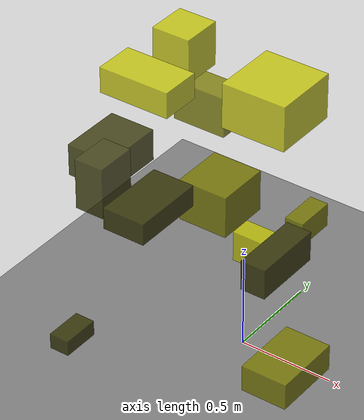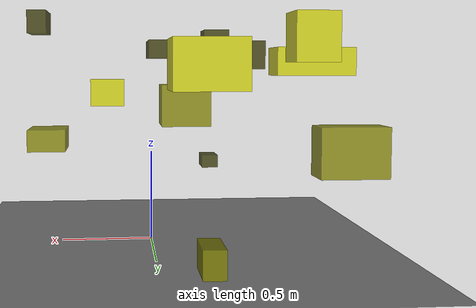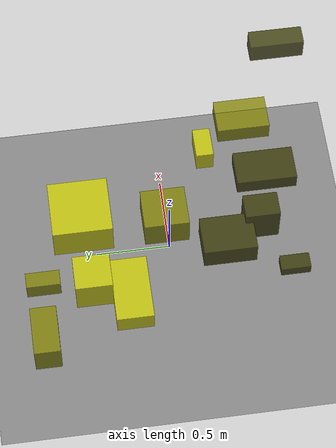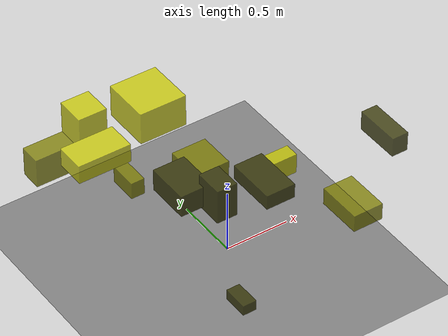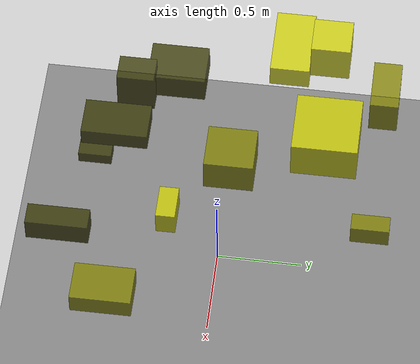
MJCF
<?xml version="1.0"?>
<mujoco model="obstacle_scene">
  <compiler angle="radian" coordinate="local"/>
  <option timestep="0.001" gravity="0 0 -9.81"/>

  <asset>
    <material name="obstacle_mat" rgba="0.8 0.8 0.0 0.8"/>
    <material name="ground_mat" rgba="0.5 0.5 0.5 1"/>
  </asset>

  <worldbody>
    <!-- Ground plane -->
    <geom name="ground" type="plane" size="3 3 0.1" material="ground_mat"/>

    <!-- Obstacles -->
    <body name="obstacle_0" pos="-0.430510 -0.510387 1.075778">
      <geom name="obs_0" type="box" size="0.076344 0.105830 0.133577" rgba="0.2 0.2 0.0 0.8"/>
    </body>
    <body name="obstacle_1" pos="0.629967 -0.575034 0.520615">
      <geom name="obs_1" type="box" size="0.116691 0.174500 0.067420" rgba="0.5 0.5 0.0 0.8"/>
    </body>
    <body name="obstacle_2" pos="-0.242838 0.596199 0.989696">
      <geom name="obs_2" type="box" size="0.181843 0.186540 0.126734" rgba="0.8 0.8 0.0 0.8"/>
    </body>
    <body name="obstacle_3" pos="-0.116175 -0.584388 1.090393">
      <geom name="obs_3" type="box" size="0.109850 0.186987 0.055524" rgba="0.2 0.2 0.0 0.8"/>
    </body>
    <body name="obstacle_4" pos="-0.228035 0.884618 0.111879">
      <geom name="obs_4" type="box" size="0.053265 0.114345 0.068498" rgba="0.5 0.5 0.0 0.8"/>
    </body>
    <body name="obstacle_5" pos="0.248746 -0.251346 0.825452">
      <geom name="obs_5" type="box" size="0.099013 0.054947 0.078394" rgba="0.8 0.8 0.0 0.8"/>
    </body>
    <body name="obstacle_6" pos="-0.557033 -0.288392 1.049169">
      <geom name="obs_6" type="box" size="0.120813 0.163891 0.083659" rgba="0.2 0.2 0.0 0.8"/>
    </body>
    <body name="obstacle_7" pos="-0.856005 0.897356 0.594928">
      <geom name="obs_7" type="box" size="0.156647 0.083072 0.115646" rgba="0.5 0.5 0.0 0.8"/>
    </body>
    <body name="obstacle_8" pos="-0.767368 0.570463 1.123723">
      <geom name="obs_8" type="box" size="0.108106 0.112010 0.123173" rgba="0.8 0.8 0.0 0.8"/>
    </body>
    <body name="obstacle_9" pos="0.702789 -0.781606 1.268420">
      <geom name="obs_9" type="box" size="0.060892 0.170609 0.073308" rgba="0.2 0.2 0.0 0.8"/>
    </body>
    <body name="obstacle_10" pos="-0.182584 0.056719 0.766499">
      <geom name="obs_10" type="box" size="0.132904 0.142066 0.111778" rgba="0.5 0.5 0.0 0.8"/>
    </body>
    <body name="obstacle_11" pos="-0.824371 0.343003 1.005806">
      <geom name="obs_11" type="box" size="0.202856 0.113012 0.073026" rgba="0.8 0.8 0.0 0.8"/>
    </body>
    <body name="obstacle_12" pos="-0.426393 -0.777176 0.348311">
      <geom name="obs_12" type="box" size="0.051588 0.097161 0.040106" rgba="0.2 0.2 0.0 0.8"/>
    </body>
  </worldbody>
</mujoco>
